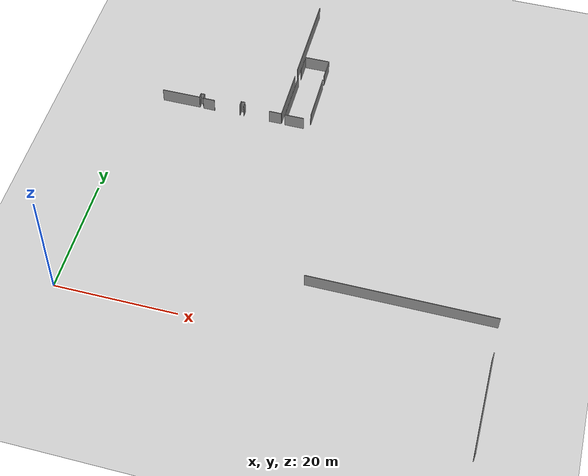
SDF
<sdf version="1.6">
 <world name="default">
  <model name="ground_plane">
   <static>1</static>
   <link name="link">
    <collision name="collision">
     <geometry><plane><normal>0 0 1</normal><size>100 100</size></plane></geometry>
     <surface><friction><ode><mu>100</mu><mu2>50</mu2></ode></friction></surface>
    </collision>
    <visual name="visual">
     <cast_shadows>0</cast_shadows>
     <geometry><plane><normal>0 0 1</normal><size>100 100</size></plane></geometry>
     <material>
      <script><uri>file://media/materials/scripts/gazebo.material</uri><name>Gazebo/Grey</name></script>
     </material>
    </visual>
   </link>
  </model>
  <model name="0510035519_A_40_1_102">
   <static>1</static>
   <link name="Wall_186">
    <collision name="Wall_186_Collision">
     <geometry><box><size>16.2358622442 0.1 2.5</size></box></geometry>
     <pose>8.11793112212 0 1.25 0 0 0</pose>
    </collision>
    <visual name="Wall_186_Visual">
     <pose>8.11793112212 0 1.25 0 0 0</pose>
     <geometry><box><size>16.2358622442 0.1 2.5</size></box></geometry>
     <material>
      <script><uri>file://media/materials/scripts/gazebo.material</uri><name>Gazebo/Grey</name></script>
      <ambient>1 1 1 1</ambient>
     </material>
    </visual>
    <pose>141.68051849 -0.114881179311 0 0 0 -1.57079632679</pose>
   </link>
   <link name="Wall_187">
    <collision name="Wall_187_Collision">
     <geometry><box><size>9.13432456475 0.1 2.5</size></box></geometry>
     <pose>4.56716228237 0 1.25 0 0 0</pose>
    </collision>
    <visual name="Wall_187_Visual">
     <pose>4.56716228237 0 1.25 0 0 0</pose>
     <geometry><box><size>9.13432456475 0.1 2.5</size></box></geometry>
     <material>
      <script><uri>file://media/materials/scripts/gazebo.material</uri><name>Gazebo/Grey</name></script>
      <ambient>1 1 1 1</ambient>
     </material>
    </visual>
    <pose>141.68051849 -18.0373617995 0 0 0 -1.57079632679</pose>
   </link>
   <link name="Wall_188">
    <collision name="Wall_188_Collision">
     <geometry><box><size>2.1354682933 0.1 2.5</size></box></geometry>
     <pose>1.06773414665 0 1.25 0 0 0</pose>
    </collision>
    <visual name="Wall_188_Visual">
     <pose>1.06773414665 0 1.25 0 0 0</pose>
     <geometry><box><size>2.1354682933 0.1 2.5</size></box></geometry>
     <material>
      <script><uri>file://media/materials/scripts/gazebo.material</uri><name>Gazebo/Grey</name></script>
      <ambient>1 1 1 1</ambient>
     </material>
    </visual>
    <pose>141.68051849 -27.1716863642 0 0 0 3.14159265359</pose>
   </link>
   <link name="Wall_189">
    <collision name="Wall_189_Collision">
     <geometry><box><size>0.909899606049 0.1 2.5</size></box></geometry>
     <pose>0.454949803025 0 1.25 0 0 0</pose>
    </collision>
    <visual name="Wall_189_Visual">
     <pose>0.454949803025 0 1.25 0 0 0</pose>
     <geometry><box><size>0.909899606049 0.1 2.5</size></box></geometry>
     <material>
      <script><uri>file://media/materials/scripts/gazebo.material</uri><name>Gazebo/Grey</name></script>
      <ambient>1 1 1 1</ambient>
     </material>
    </visual>
    <pose>135.018426738 -27.1716863642 0 0 0 1.57079632679</pose>
   </link>
   <link name="Wall_190">
    <collision name="Wall_190_Collision">
     <geometry><box><size>0.679120599822 0.1 2.5</size></box></geometry>
     <pose>0.339560299911 0 1.25 0 0 0</pose>
    </collision>
    <visual name="Wall_190_Visual">
     <pose>0.339560299911 0 1.25 0 0 0</pose>
     <geometry><box><size>0.679120599822 0.1 2.5</size></box></geometry>
     <material>
      <script><uri>file://media/materials/scripts/gazebo.material</uri><name>Gazebo/Grey</name></script>
      <ambient>1 1 1 1</ambient>
     </material>
    </visual>
    <pose>135.018426738 -26.2617867582 0 0 0 3.14159265359</pose>
   </link>
   <link name="Wall_191">
    <collision name="Wall_191_Collision">
     <geometry><box><size>0.932011691447 0.1 2.5</size></box></geometry>
     <pose>0.466005845724 0 1.25 0 0 0</pose>
    </collision>
    <visual name="Wall_191_Visual">
     <pose>0.466005845724 0 1.25 0 0 0</pose>
     <geometry><box><size>0.932011691447 0.1 2.5</size></box></geometry>
     <material>
      <script><uri>file://media/materials/scripts/gazebo.material</uri><name>Gazebo/Grey</name></script>
      <ambient>1 1 1 1</ambient>
     </material>
    </visual>
    <pose>134.339306138 -26.2617867582 0 0 0 -1.57079632679</pose>
   </link>
   <link name="Wall_192">
    <collision name="Wall_192_Collision">
     <geometry><box><size>2.01067479985 0.1 2.5</size></box></geometry>
     <pose>1.00533739992 0 1.25 0 0 0</pose>
    </collision>
    <visual name="Wall_192_Visual">
     <pose>1.00533739992 0 1.25 0 0 0</pose>
     <geometry><box><size>2.01067479985 0.1 2.5</size></box></geometry>
     <material>
      <script><uri>file://media/materials/scripts/gazebo.material</uri><name>Gazebo/Grey</name></script>
      <ambient>1 1 1 1</ambient>
     </material>
    </visual>
    <pose>129.843182107 -27.1937984496 0 0 0 3.14159265359</pose>
   </link>
   <link name="Wall_193">
    <collision name="Wall_193_Collision">
     <geometry><box><size>0.93023255814 0.1 2.5</size></box></geometry>
     <pose>0.46511627907 0 1.25 0 0 0</pose>
    </collision>
    <visual name="Wall_193_Visual">
     <pose>0.46511627907 0 1.25 0 0 0</pose>
     <geometry><box><size>0.93023255814 0.1 2.5</size></box></geometry>
     <material>
      <script><uri>file://media/materials/scripts/gazebo.material</uri><name>Gazebo/Grey</name></script>
      <ambient>1 1 1 1</ambient>
     </material>
    </visual>
    <pose>127.832507307 -27.1937984496 0 0 0 1.57079632679</pose>
   </link>
   <link name="Wall_194">
    <collision name="Wall_194_Collision">
     <geometry><box><size>0.681153895031 0.1 2.5</size></box></geometry>
     <pose>0.340576947516 0 1.25 0 0 0</pose>
    </collision>
    <visual name="Wall_194_Visual">
     <pose>0.340576947516 0 1.25 0 0 0</pose>
     <geometry><box><size>0.681153895031 0.1 2.5</size></box></geometry>
     <material>
      <script><uri>file://media/materials/scripts/gazebo.material</uri><name>Gazebo/Grey</name></script>
      <ambient>1 1 1 1</ambient>
     </material>
    </visual>
    <pose>127.832507307 -26.2635658915 0 0 0 3.14159265359</pose>
   </link>
   <link name="Wall_195">
    <collision name="Wall_195_Collision">
     <geometry><box><size>0.855763121108 0.1 2.5</size></box></geometry>
     <pose>0.427881560554 0 1.25 0 0 0</pose>
    </collision>
    <visual name="Wall_195_Visual">
     <pose>0.427881560554 0 1.25 0 0 0</pose>
     <geometry><box><size>0.855763121108 0.1 2.5</size></box></geometry>
     <material>
      <script><uri>file://media/materials/scripts/gazebo.material</uri><name>Gazebo/Grey</name></script>
      <ambient>1 1 1 1</ambient>
     </material>
    </visual>
    <pose>127.151353412 -26.2635658915 0 0 0 -1.57079632679</pose>
   </link>
   <link name="Wall_196">
    <collision name="Wall_196_Collision">
     <geometry><box><size>6.5390773923 0.1 2.5</size></box></geometry>
     <pose>3.26953869615 0 1.25 0 0 0</pose>
    </collision>
    <visual name="Wall_196_Visual">
     <pose>3.26953869615 0 1.25 0 0 0</pose>
     <geometry><box><size>6.5390773923 0.1 2.5</size></box></geometry>
     <material>
      <script><uri>file://media/materials/scripts/gazebo.material</uri><name>Gazebo/Grey</name></script>
      <ambient>1 1 1 1</ambient>
     </material>
    </visual>
    <pose>127.151353412 -27.1193290126 0 0 0 3.14159265359</pose>
   </link>
   <link name="Wall_210">
    <collision name="Wall_210_Collision">
     <geometry><box><size>3.29876731478 0.1 2.5</size></box></geometry>
     <pose>1.64938365739 0 1.25 0 0 0</pose>
    </collision>
    <visual name="Wall_210_Visual">
     <pose>1.64938365739 0 1.25 0 0 0</pose>
     <geometry><box><size>3.29876731478 0.1 2.5</size></box></geometry>
     <material>
      <script><uri>file://media/materials/scripts/gazebo.material</uri><name>Gazebo/Grey</name></script>
      <ambient>1 1 1 1</ambient>
     </material>
    </visual>
    <pose>145.599440844 -27.2514932012 0 0 0 3.14159265359</pose>
   </link>
   <link name="Wall_211">
    <collision name="Wall_211_Collision">
     <geometry><box><size>9.23853094421 0.1 2.5</size></box></geometry>
     <pose>4.61926547211 0 1.25 0 0 0</pose>
    </collision>
    <visual name="Wall_211_Visual">
     <pose>4.61926547211 0 1.25 0 0 0</pose>
     <geometry><box><size>9.23853094421 0.1 2.5</size></box></geometry>
     <material>
      <script><uri>file://media/materials/scripts/gazebo.material</uri><name>Gazebo/Grey</name></script>
      <ambient>1 1 1 1</ambient>
     </material>
    </visual>
    <pose>142.300673529 -27.2514932012 0 0 0 1.57079632679</pose>
   </link>
   <link name="Wall_212">
    <collision name="Wall_212_Collision">
     <geometry><box><size>3.2349726776 0.1 2.5</size></box></geometry>
     <pose>1.6174863388 0 1.25 0 0 0</pose>
    </collision>
    <visual name="Wall_212_Visual">
     <pose>1.6174863388 0 1.25 0 0 0</pose>
     <geometry><box><size>3.2349726776 0.1 2.5</size></box></geometry>
     <material>
      <script><uri>file://media/materials/scripts/gazebo.material</uri><name>Gazebo/Grey</name></script>
      <ambient>1 1 1 1</ambient>
     </material>
    </visual>
    <pose>142.300673529 -16.3090608718 0 0 0 1.57079632679</pose>
   </link>
   <link name="Wall_213">
    <collision name="Wall_213_Collision">
     <geometry><box><size>4.21934172068 0.1 2.5</size></box></geometry>
     <pose>2.10967086034 0 1.25 0 0 0</pose>
    </collision>
    <visual name="Wall_213_Visual">
     <pose>2.10967086034 0 1.25 0 0 0</pose>
     <geometry><box><size>4.21934172068 0.1 2.5</size></box></geometry>
     <material>
      <script><uri>file://media/materials/scripts/gazebo.material</uri><name>Gazebo/Grey</name></script>
      <ambient>1 1 1 1</ambient>
     </material>
    </visual>
    <pose>142.300673529 -13.0740881942 0 0 0 0.0</pose>
   </link>
   <link name="Wall_214">
    <collision name="Wall_214_Collision">
     <geometry><box><size>3.5508959207 0.1 2.5</size></box></geometry>
     <pose>1.77544796035 0 1.25 0 0 0</pose>
    </collision>
    <visual name="Wall_214_Visual">
     <pose>1.77544796035 0 1.25 0 0 0</pose>
     <geometry><box><size>3.5508959207 0.1 2.5</size></box></geometry>
     <material>
      <script><uri>file://media/materials/scripts/gazebo.material</uri><name>Gazebo/Grey</name></script>
      <ambient>1 1 1 1</ambient>
     </material>
    </visual>
    <pose>146.52001525 -13.0740881942 0 0 0 -1.57079632679</pose>
   </link>
   <link name="Wall_215">
    <collision name="Wall_215_Collision">
     <geometry><box><size>8.56940859869 0.1 2.5</size></box></geometry>
     <pose>4.28470429934 0 1.25 0 0 0</pose>
    </collision>
    <visual name="Wall_215_Visual">
     <pose>4.28470429934 0 1.25 0 0 0</pose>
     <geometry><box><size>8.56940859869 0.1 2.5</size></box></geometry>
     <material>
      <script><uri>file://media/materials/scripts/gazebo.material</uri><name>Gazebo/Grey</name></script>
      <ambient>1 1 1 1</ambient>
     </material>
    </visual>
    <pose>146.52001525 -17.6357859957 0 0 0 -1.5663177709</pose>
   </link>
   <link name="Wall_727">
    <collision name="Wall_727_Collision">
     <geometry><box><size>30.0012708095 0.1 2.5</size></box></geometry>
     <pose>15.0006354048 0 1.25 0 0 0</pose>
    </collision>
    <visual name="Wall_727_Visual">
     <pose>15.0006354048 0 1.25 0 0 0</pose>
     <geometry><box><size>30.0012708095 0.1 2.5</size></box></geometry>
     <material>
      <script><uri>file://media/materials/scripts/gazebo.material</uri><name>Gazebo/Grey</name></script>
      <ambient>1 1 1 1</ambient>
     </material>
    </visual>
    <pose>153.664506291 -58.4793493455 0 0 0 0.0</pose>
   </link>
   <link name="Wall_733">
    <collision name="Wall_733_Collision">
     <geometry><box><size>16.6183759055 0.1 2.5</size></box></geometry>
     <pose>8.30918795273 0 1.25 0 0 0</pose>
    </collision>
    <visual name="Wall_733_Visual">
     <pose>8.30918795273 0 1.25 0 0 0</pose>
     <geometry><box><size>16.6183759055 0.1 2.5</size></box></geometry>
     <material>
      <script><uri>file://media/materials/scripts/gazebo.material</uri><name>Gazebo/Grey</name></script>
      <ambient>1 1 1 1</ambient>
     </material>
    </visual>
    <pose>183.664760452 -64.5459397636 0 0 0 -1.57079632679</pose>
   </link>
   <pose>-116.6 68.721527513 0 0 0 0</pose>
  </model>
 </world>
</sdf>
